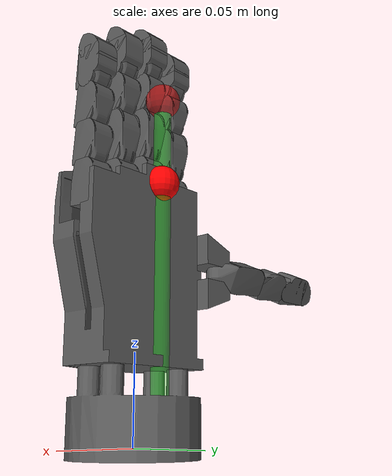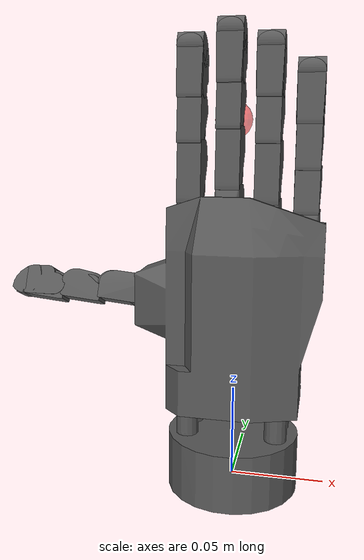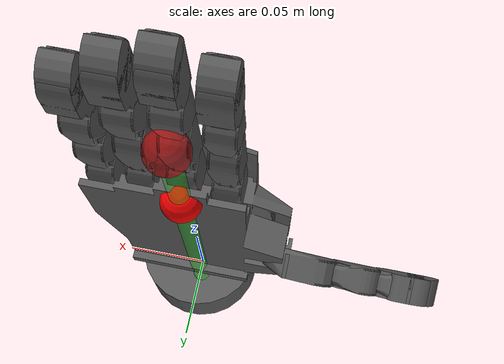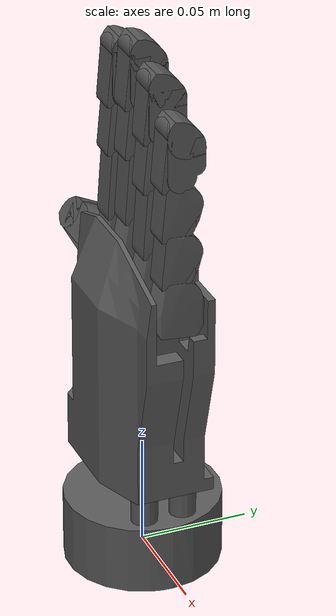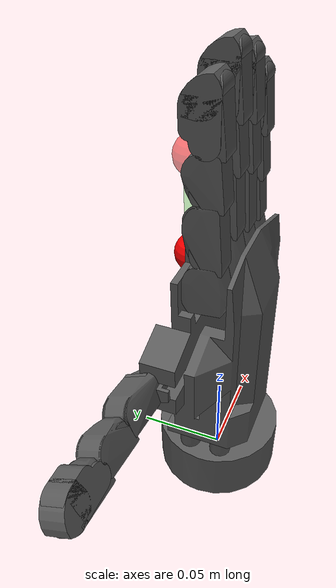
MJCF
<mujoco model="qbhand2m">
  <compiler angle="radian" meshdir="meshes"/>

  <option timestep="0.001" integrator="implicitfast"/>

  <default>
    <joint damping="80.0" armature="5.0" frictionloss="2.0"/>
    <geom contype="0" conaffinity="0" density="0" group="1"/>
  </default>

  <asset>
    <mesh name="flange_iso_04" content_type="model/obj" file="meshes/flange_iso_04.obj" scale="0.001 0.001 0.001"/>
    <mesh name="palm_pinch_r" content_type="model/obj" file="meshes/palm_pinch_r.obj" scale="0.001 0.001 0.001"/>
    <mesh name="ph_thumb_r" content_type="model/obj" file="meshes/ph_thumb_r.obj" scale="0.001 0.001 0.001"/>
    <mesh name="ph_thumb_r_collision" content_type="model/obj" file="meshes/ph_thumb_r_collision.obj" scale="0.001 0.001 0.001"/>
    <mesh name="ph_short" content_type="model/obj" file="meshes/ph_short.obj" scale="0.001 0.001 0.001"/>
    <mesh name="ph_short_collision" content_type="model/obj" file="meshes/ph_short_collision.obj" scale="0.001 0.001 0.001"/>
    <mesh name="ph_distal" content_type="model/obj" file="meshes/ph_distal.obj" scale="0.001 0.001 0.001"/>
    <mesh name="ph_distal_collision" content_type="model/obj" file="meshes/ph_distal_collision.obj" scale="0.001 0.001 0.001"/>
    <mesh name="ph_knuckle" content_type="model/obj" file="meshes/ph_knuckle.obj" scale="0.001 0.001 0.001"/>
    <mesh name="ph_knuckle_collision" content_type="model/obj" file="meshes/ph_knuckle_collision.obj" scale="0.001 0.001 0.001"/>
    <mesh name="ph_medium" content_type="model/obj" file="meshes/ph_medium.obj" scale="0.001 0.001 0.001"/>
    <mesh name="ph_medium_collision" content_type="model/obj" file="meshes/ph_medium_collision.obj" scale="0.001 0.001 0.001"/>
  </asset>

  <worldbody>
    <body name="qbhand2m_base_link" pos="0 0 0">

      <!-- Geoms de la palma y flange -->
      <geom type="mesh" contype="0" conaffinity="0" group="1" density="0" rgba="0.35 0.35 0.35 1" mesh="flange_iso_04"/>
      <geom type="mesh" rgba="0.35 0.35 0.35 1" mesh="flange_iso_04"/>
      <geom pos="-0.0045 0.0145 0.144" quat="0.707388 0.706825 0 0" type="mesh" contype="0" conaffinity="0" group="1" density="0" rgba="0.35 0.35 0.35 1" mesh="palm_pinch_r"/>
      <geom pos="-0.0045 0.0145 0.144" quat="0.707388 0.706825 0 0" type="mesh" rgba="0.35 0.35 0.35 1" mesh="palm_pinch_r"/>

      <!-- Sites para robosuite -->
      <site name="ft_frame" pos="-0.0045 0.0145 0.144" size="0.01 0.01 0.01" rgba="1 0 0 1" type="sphere" group="1"/>
      <site name="grip_site" pos="-0.0045 0.0145 0.194" size="0.01 0.01 0.01" rgba="1 0 0 0.5" type="sphere" group="1"/>
      <site name="grip_site_cylinder" pos="-0.0045 0.0145 0.094" size="0.005 0.1" rgba="0 1 0 0.3" type="cylinder" group="1"/>
      <!-- robosuite expects a body named 'eef' to derive gripper orientation -->
      <body name="eef" pos="-0.0045 0.0145 0.194" quat="1 0 0 0">
        <site name="eef" pos="0 0 0" size="0.01" rgba="0 1 0 0.3" type="sphere" group="1"/>
      </body>

      <body name="qbhand2m1_synergy_tendon_virtual_link" pos="-0.0045 0.0145 0.144" quat="0.707388 0.706825 0 0">
        <inertial pos="0 0 0" mass="0.005" diaginertia="1e-06 1e-06 1e-06"/>
        <joint name="qbhand2m1_synergy_joint" pos="0 0 0" axis="0 0 1" range="0 1" actuatorfrcrange="-100 100"/>
      </body>

      <body name="qbhand2m1_thumb_knuckle_link" pos="-0.0485 0.016463 0.0974984" quat="0.000796327 0 0.000796326 0.999999">
        <inertial pos="0.0130716 -0.00273578 0.000643478" quat="0.502681 0.576479 0.364062 0.531453" mass="0.01" diaginertia="1.4342e-06 1.35762e-06 3.12515e-07"/>
        <joint name="qbhand2m1_thumb_knuckle_joint" pos="0 0 0" axis="0 0 -1" range="0 1.571" actuatorfrcrange="-100 100"/>
        <geom type="mesh" contype="0" conaffinity="0" group="1" density="0" rgba="0.35 0.35 0.35 1" mesh="ph_thumb_r"/>
        <geom type="mesh" rgba="0.35 0.35 0.35 1" mesh="ph_thumb_r_collision"/>
        <body name="qbhand2m1_thumb_proximal_virtual_link" pos="0.0255 -0.0038 -0.00012" quat="0.841496 -0.540263 0 0">
          <inertial pos="0 0 0" mass="0.005" diaginertia="1e-06 1e-06 1e-06"/>
          <joint name="qbhand2m1_thumb_proximal_joint" pos="0 0 0" axis="0 0 -1" range="0 0.785" actuatorfrcrange="-100 100"/>
          <body name="qbhand2m1_thumb_proximal_link" pos="0.013 0 0">
            <inertial pos="0.00476016 -0.00137869 0" quat="0.0365143 0.706163 -0.0365143 0.706163" mass="0.0063" diaginertia="2.6915e-07 2.3576e-07 1.79645e-07"/>
            <joint name="qbhand2m1_thumb_proximal_virtual_joint" pos="0 0 0" axis="0 0 -1" range="0 0.785" actuatorfrcrange="-100 100"/>
            <geom type="mesh" contype="0" conaffinity="0" group="1" density="0" rgba="0.35 0.35 0.35 1" mesh="ph_short"/>
            <geom type="mesh" rgba="0.35 0.35 0.35 1" mesh="ph_short_collision"/>
            <body name="qbhand2m1_thumb_distal_virtual_link" pos="0.009 0 0">
              <inertial pos="0 0 0" mass="0.005" diaginertia="1e-06 1e-06 1e-06"/>
              <joint name="qbhand2m1_thumb_distal_joint" pos="0 0 0" axis="0 0 -1" range="0 0.785" actuatorfrcrange="-100 100"/>
              <body name="qbhand2m1_thumb_distal_link" pos="0.013 0 0">
                <inertial pos="0.00880255 -0.00172193 0" quat="0.0131386 0.706985 -0.0131386 0.706985" mass="0.009" diaginertia="6.6782e-07 5.99819e-07 2.654e-07"/>
                <joint name="qbhand2m1_thumb_distal_virtual_joint" pos="0 0 0" axis="0 0 -1" range="0 0.785" actuatorfrcrange="-100 100"/>
                <geom type="mesh" contype="0" conaffinity="0" group="1" density="0" rgba="0.35 0.35 0.35 1" mesh="ph_distal"/>
                <geom type="mesh" rgba="0.35 0.35 0.35 1" mesh="ph_distal_collision"/>
              </body>
            </body>
          </body>
        </body>
      </body>

      <body name="qbhand2m1_index_knuckle_link" pos="-0.0245 0.00049443 0.137011" quat="0.500398 0.5 -0.499602 0.5">
        <inertial pos="0.000427536 0 -0.00143217" quat="0.587164 0.394003 0.394003 0.587164" mass="0.0095" diaginertia="1.12538e-06 7.39498e-07 6.27245e-07"/>
        <joint name="qbhand2m1_index_knuckle_joint" pos="0 0 0" axis="0 0 -1" range="-0.524 0.524" actuatorfrcrange="-100 100"/>
        <geom type="mesh" contype="0" conaffinity="0" group="1" density="0" rgba="0.35 0.35 0.35 1" mesh="ph_knuckle"/>
        <geom type="mesh" rgba="0.35 0.35 0.35 1" mesh="ph_knuckle_collision"/>
        <body name="qbhand2m1_index_proximal_virtual_link" pos="0.009 0 0" quat="0.707388 0.706825 0 0">
          <inertial pos="0 0 0" mass="0.005" diaginertia="1e-06 1e-06 1e-06"/>
          <joint name="qbhand2m1_index_proximal_joint" pos="0 0 0" axis="0 0 -1" range="0 0.785" actuatorfrcrange="-100 100"/>
          <body name="qbhand2m1_index_proximal_link" pos="0.013 0 0">
            <inertial pos="0.00877074 -0.00178631 0" quat="0.0123083 0.707 -0.0123083 0.707" mass="0.0082" diaginertia="5.95622e-07 5.59876e-07 2.26817e-07"/>
            <joint name="qbhand2m1_index_proximal_virtual_joint" pos="0 0 0" axis="0 0 -1" range="0 0.785" actuatorfrcrange="-100 100"/>
            <geom type="mesh" contype="0" conaffinity="0" group="1" density="0" rgba="0.35 0.35 0.35 1" mesh="ph_medium"/>
            <geom type="mesh" rgba="0.35 0.35 0.35 1" mesh="ph_medium_collision"/>
            <body name="qbhand2m1_index_middle_virtual_link" pos="0.017 0 0">
              <inertial pos="0 0 0" mass="0.005" diaginertia="1e-06 1e-06 1e-06"/>
              <joint name="qbhand2m1_index_middle_joint" pos="0 0 0" axis="0 0 -1" range="0 0.785" actuatorfrcrange="-100 100"/>
              <body name="qbhand2m1_index_middle_link" pos="0.013 0 0">
                <inertial pos="0.00476016 -0.00137869 0" quat="0.0365143 0.706163 -0.0365143 0.706163" mass="0.0063" diaginertia="2.6915e-07 2.3576e-07 1.79645e-07"/>
                <joint name="qbhand2m1_index_middle_virtual_joint" pos="0 0 0" axis="0 0 -1" range="0 0.785" actuatorfrcrange="-100 100"/>
                <geom type="mesh" contype="0" conaffinity="0" group="1" density="0" rgba="0.35 0.35 0.35 1" mesh="ph_short"/>
                <geom type="mesh" rgba="0.35 0.35 0.35 1" mesh="ph_short_collision"/>
                <body name="qbhand2m1_index_distal_virtual_link" pos="0.009 0 0">
                  <inertial pos="0 0 0" mass="0.005" diaginertia="1e-06 1e-06 1e-06"/>
                  <joint name="qbhand2m1_index_distal_joint" pos="0 0 0" axis="0 0 -1" range="0 0.785" actuatorfrcrange="-100 100"/>
                  <body name="qbhand2m1_index_distal_link" pos="0.013 0 0">
                    <inertial pos="0.00880255 -0.00172193 0" quat="0.0131386 0.706985 -0.0131386 0.706985" mass="0.009" diaginertia="6.6782e-07 5.99819e-07 2.654e-07"/>
                    <joint name="qbhand2m1_index_distal_virtual_joint" pos="0 0 0" axis="0 0 -1" range="0 0.785" actuatorfrcrange="-100 100"/>
                    <geom type="mesh" contype="0" conaffinity="0" group="1" density="0" rgba="0.35 0.35 0.35 1" mesh="ph_distal"/>
                    <geom type="mesh" rgba="0.35 0.35 0.35 1" mesh="ph_distal_collision"/>
                  </body>
                </body>
              </body>
            </body>
          </body>
        </body>
      </body>

      <body name="qbhand2m1_middle_knuckle_link" pos="-0.0045 0.000500004 0.144011" quat="0.500398 0.5 -0.499602 0.5">
        <inertial pos="0.000427536 0 -0.00143217" quat="0.587164 0.394003 0.394003 0.587164" mass="0.0095" diaginertia="1.12538e-06 7.39498e-07 6.27245e-07"/>
        <joint name="qbhand2m1_middle_knuckle_joint" pos="0 0 0" axis="0 0 -1" range="-0.524 0.524" actuatorfrcrange="-100 100"/>
        <geom type="mesh" contype="0" conaffinity="0" group="1" density="0" rgba="0.35 0.35 0.35 1" mesh="ph_knuckle"/>
        <geom type="mesh" rgba="0.35 0.35 0.35 1" mesh="ph_knuckle_collision"/>
        <body name="qbhand2m1_middle_proximal_virtual_link" pos="0.009 0 0" quat="0.707388 0.706825 0 0">
          <inertial pos="0 0 0" mass="0.005" diaginertia="1e-06 1e-06 1e-06"/>
          <joint name="qbhand2m1_middle_proximal_joint" pos="0 0 0" axis="0 0 -1" range="0 0.785" actuatorfrcrange="-100 100"/>
          <body name="qbhand2m1_middle_proximal_link" pos="0.013 0 0">
            <inertial pos="0.00877074 -0.00178631 0" quat="0.0123083 0.707 -0.0123083 0.707" mass="0.0082" diaginertia="5.95622e-07 5.59876e-07 2.26817e-07"/>
            <joint name="qbhand2m1_middle_proximal_virtual_joint" pos="0 0 0" axis="0 0 -1" range="0 0.785" actuatorfrcrange="-100 100"/>
            <geom type="mesh" contype="0" conaffinity="0" group="1" density="0" rgba="0.35 0.35 0.35 1" mesh="ph_medium"/>
            <geom type="mesh" rgba="0.35 0.35 0.35 1" mesh="ph_medium_collision"/>
            <body name="qbhand2m1_middle_middle_virtual_link" pos="0.017 0 0">
              <inertial pos="0 0 0" mass="0.005" diaginertia="1e-06 1e-06 1e-06"/>
              <joint name="qbhand2m1_middle_middle_joint" pos="0 0 0" axis="0 0 -1" range="0 0.785" actuatorfrcrange="-100 100"/>
              <body name="qbhand2m1_middle_middle_link" pos="0.013 0 0">
                <inertial pos="0.00476016 -0.00137869 0" quat="0.0365143 0.706163 -0.0365143 0.706163" mass="0.0063" diaginertia="2.6915e-07 2.3576e-07 1.79645e-07"/>
                <joint name="qbhand2m1_middle_middle_virtual_joint" pos="0 0 0" axis="0 0 -1" range="0 0.785" actuatorfrcrange="-100 100"/>
                <geom type="mesh" contype="0" conaffinity="0" group="1" density="0" rgba="0.35 0.35 0.35 1" mesh="ph_short"/>
                <geom type="mesh" rgba="0.35 0.35 0.35 1" mesh="ph_short_collision"/>
                <body name="qbhand2m1_middle_distal_virtual_link" pos="0.009 0 0">
                  <inertial pos="0 0 0" mass="0.005" diaginertia="1e-06 1e-06 1e-06"/>
                  <joint name="qbhand2m1_middle_distal_joint" pos="0 0 0" axis="0 0 -1" range="0 0.785" actuatorfrcrange="-100 100"/>
                  <body name="qbhand2m1_middle_distal_link" pos="0.013 0 0">
                    <inertial pos="0.00880255 -0.00172193 0" quat="0.0131386 0.706985 -0.0131386 0.706985" mass="0.009" diaginertia="6.6782e-07 5.99819e-07 2.654e-07"/>
                    <joint name="qbhand2m1_middle_distal_virtual_joint" pos="0 0 0" axis="0 0 -1" range="0 0.785" actuatorfrcrange="-100 100"/>
                    <geom type="mesh" contype="0" conaffinity="0" group="1" density="0" rgba="0.35 0.35 0.35 1" mesh="ph_distal"/>
                    <geom type="mesh" rgba="0.35 0.35 0.35 1" mesh="ph_distal_collision"/>
                  </body>
                </body>
              </body>
            </body>
          </body>
        </body>
      </body>

      <body name="qbhand2m1_ring_knuckle_link" pos="0.0155 0.00049443 0.137011" quat="0.500398 0.5 -0.499602 0.5">
        <inertial pos="0.000427536 0 -0.00143217" quat="0.587164 0.394003 0.394003 0.587164" mass="0.0095" diaginertia="1.12538e-06 7.39498e-07 6.27245e-07"/>
        <joint name="qbhand2m1_ring_knuckle_joint" pos="0 0 0" axis="0 0 -1" range="-0.524 0.524" actuatorfrcrange="-100 100"/>
        <geom type="mesh" contype="0" conaffinity="0" group="1" density="0" rgba="0.35 0.35 0.35 1" mesh="ph_knuckle"/>
        <geom type="mesh" rgba="0.35 0.35 0.35 1" mesh="ph_knuckle_collision"/>
        <body name="qbhand2m1_ring_proximal_virtual_link" pos="0.009 0 0" quat="0.707388 0.706825 0 0">
          <inertial pos="0 0 0" mass="0.005" diaginertia="1e-06 1e-06 1e-06"/>
          <joint name="qbhand2m1_ring_proximal_joint" pos="0 0 0" axis="0 0 -1" range="0 0.785" actuatorfrcrange="-100 100"/>
          <body name="qbhand2m1_ring_proximal_link" pos="0.013 0 0">
            <inertial pos="0.00877074 -0.00178631 0" quat="0.0123083 0.707 -0.0123083 0.707" mass="0.0082" diaginertia="5.95622e-07 5.59876e-07 2.26817e-07"/>
            <joint name="qbhand2m1_ring_proximal_virtual_joint" pos="0 0 0" axis="0 0 -1" range="0 0.785" actuatorfrcrange="-100 100"/>
            <geom type="mesh" contype="0" conaffinity="0" group="1" density="0" rgba="0.35 0.35 0.35 1" mesh="ph_medium"/>
            <geom type="mesh" rgba="0.35 0.35 0.35 1" mesh="ph_medium_collision"/>
            <body name="qbhand2m1_ring_middle_virtual_link" pos="0.017 0 0">
              <inertial pos="0 0 0" mass="0.005" diaginertia="1e-06 1e-06 1e-06"/>
              <joint name="qbhand2m1_ring_middle_joint" pos="0 0 0" axis="0 0 -1" range="0 0.785" actuatorfrcrange="-100 100"/>
              <body name="qbhand2m1_ring_middle_link" pos="0.013 0 0">
                <inertial pos="0.00476016 -0.00137869 0" quat="0.0365143 0.706163 -0.0365143 0.706163" mass="0.0063" diaginertia="2.6915e-07 2.3576e-07 1.79645e-07"/>
                <joint name="qbhand2m1_ring_middle_virtual_joint" pos="0 0 0" axis="0 0 -1" range="0 0.785" actuatorfrcrange="-100 100"/>
                <geom type="mesh" contype="0" conaffinity="0" group="1" density="0" rgba="0.35 0.35 0.35 1" mesh="ph_short"/>
                <geom type="mesh" rgba="0.35 0.35 0.35 1" mesh="ph_short_collision"/>
                <body name="qbhand2m1_ring_distal_virtual_link" pos="0.009 0 0">
                  <inertial pos="0 0 0" mass="0.005" diaginertia="1e-06 1e-06 1e-06"/>
                  <joint name="qbhand2m1_ring_distal_joint" pos="0 0 0" axis="0 0 -1" range="0 0.785" actuatorfrcrange="-100 100"/>
                  <body name="qbhand2m1_ring_distal_link" pos="0.013 0 0">
                    <inertial pos="0.00880255 -0.00172193 0" quat="0.0131386 0.706985 -0.0131386 0.706985" mass="0.009" diaginertia="6.6782e-07 5.99819e-07 2.654e-07"/>
                    <joint name="qbhand2m1_ring_distal_virtual_joint" pos="0 0 0" axis="0 0 -1" range="0 0.785" actuatorfrcrange="-100 100"/>
                    <geom type="mesh" contype="0" conaffinity="0" group="1" density="0" rgba="0.35 0.35 0.35 1" mesh="ph_distal"/>
                    <geom type="mesh" rgba="0.35 0.35 0.35 1" mesh="ph_distal_collision"/>
                  </body>
                </body>
              </body>
            </body>
          </body>
        </body>
      </body>

      <body name="qbhand2m1_little_knuckle_link" pos="0.0355 0.000490449 0.132011" quat="0.500398 0.5 -0.499602 0.5">
        <inertial pos="0.000427536 0 -0.00143217" quat="0.587164 0.394003 0.394003 0.587164" mass="0.0095" diaginertia="1.12538e-06 7.39498e-07 6.27245e-07"/>
        <joint name="qbhand2m1_little_knuckle_joint" pos="0 0 0" axis="0 0 -1" range="-0.524 0.524" actuatorfrcrange="-100 100"/>
        <geom type="mesh" contype="0" conaffinity="0" group="1" density="0" rgba="0.35 0.35 0.35 1" mesh="ph_knuckle"/>
        <geom type="mesh" rgba="0.35 0.35 0.35 1" mesh="ph_knuckle_collision"/>
        <body name="qbhand2m1_little_proximal_virtual_link" pos="0.009 0 0" quat="0.707388 0.706825 0 0">
          <inertial pos="0 0 0" mass="0.005" diaginertia="1e-06 1e-06 1e-06"/>
          <joint name="qbhand2m1_little_proximal_joint" pos="0 0 0" axis="0 0 -1" range="0 0.785" actuatorfrcrange="-100 100"/>
          <body name="qbhand2m1_little_proximal_link" pos="0.013 0 0">
            <inertial pos="0.00476016 -0.00137869 0" quat="0.0365143 0.706163 -0.0365143 0.706163" mass="0.0063" diaginertia="2.6915e-07 2.3576e-07 1.79645e-07"/>
            <joint name="qbhand2m1_little_proximal_virtual_joint" pos="0 0 0" axis="0 0 -1" range="0 0.785" actuatorfrcrange="-100 100"/>
            <geom type="mesh" contype="0" conaffinity="0" group="1" density="0" rgba="0.35 0.35 0.35 1" mesh="ph_short"/>
            <geom type="mesh" rgba="0.35 0.35 0.35 1" mesh="ph_short_collision"/>
            <body name="qbhand2m1_little_middle_virtual_link" pos="0.009 0 0">
              <inertial pos="0 0 0" mass="0.005" diaginertia="1e-06 1e-06 1e-06"/>
              <joint name="qbhand2m1_little_middle_joint" pos="0 0 0" axis="0 0 -1" range="0 0.785" actuatorfrcrange="-100 100"/>
              <body name="qbhand2m1_little_middle_link" pos="0.013 0 0">
                <inertial pos="0.00476016 -0.00137869 0" quat="0.0365143 0.706163 -0.0365143 0.706163" mass="0.0063" diaginertia="2.6915e-07 2.3576e-07 1.79645e-07"/>
                <joint name="qbhand2m1_little_middle_virtual_joint" pos="0 0 0" axis="0 0 -1" range="0 0.785" actuatorfrcrange="-100 100"/>
                <geom type="mesh" contype="0" conaffinity="0" group="1" density="0" rgba="0.35 0.35 0.35 1" mesh="ph_short"/>
                <geom type="mesh" rgba="0.35 0.35 0.35 1" mesh="ph_short_collision"/>
                <body name="qbhand2m1_little_distal_virtual_link" pos="0.009 0 0">
                  <inertial pos="0 0 0" mass="0.005" diaginertia="1e-06 1e-06 1e-06"/>
                  <joint name="qbhand2m1_little_distal_joint" pos="0 0 0" axis="0 0 -1" range="0 0.785" actuatorfrcrange="-100 100"/>
                  <body name="qbhand2m1_little_distal_link" pos="0.013 0 0">
                    <inertial pos="0.00880255 -0.00172193 0" quat="0.0131386 0.706985 -0.0131386 0.706985" mass="0.009" diaginertia="6.6782e-07 5.99819e-07 2.654e-07"/>
                    <joint name="qbhand2m1_little_distal_virtual_joint" pos="0 0 0" axis="0 0 -1" range="0 0.785" actuatorfrcrange="-100 100"/>
                    <geom type="mesh" contype="0" conaffinity="0" group="1" density="0" rgba="0.35 0.35 0.35 1" mesh="ph_distal"/>
                    <geom type="mesh" rgba="0.35 0.35 0.35 1" mesh="ph_distal_collision"/>
                  </body>
                </body>
              </body>
            </body>
          </body>
        </body>
      </body>

      <body name="qbhand2m1_manipulation_tendon_virtual_link" pos="-0.0045 0.0145 0.144" quat="0.707388 0.706825 0 0">
        <inertial pos="0 0 0" mass="0.005" diaginertia="1e-06 1e-06 1e-06"/>
        <joint name="qbhand2m1_manipulation_joint" pos="0 0 0" axis="0 0 1" range="-1 1" actuatorfrcrange="-100 100"/>
      </body>

      <body name="qbhand2m1_motor_1_tendon_virtual_link" pos="-0.0045 0.0145 0.144" quat="0.707388 0.706825 0 0">
        <inertial pos="0 0 0" mass="0.005" diaginertia="1e-06 1e-06 1e-06"/>
        <joint name="qbhand2m1_motor_1_joint" pos="0 0 0" axis="0 0 1" range="0 1" actuatorfrcrange="-100 100"/>
      </body>

      <body name="qbhand2m1_motor_2_tendon_virtual_link" pos="-0.0045 0.0145 0.144" quat="0.707388 0.706825 0 0">
        <inertial pos="0 0 0" mass="0.005" diaginertia="1e-06 1e-06 1e-06"/>
        <joint name="qbhand2m1_motor_2_joint" pos="0 0 0" axis="0 0 1" range="0 1" actuatorfrcrange="-100 100"/>
      </body>

    </body>
  </worldbody>

  <equality>
    <!-- Pulgar -->
    <joint name="thumb_knuckle_eq"    joint1="qbhand2m1_thumb_knuckle_joint"           joint2="qbhand2m1_manipulation_joint"   polycoef="0 0.65 0 0 0"/>
    <joint name="thumb_proximal_eq"   joint1="qbhand2m1_thumb_proximal_joint"          joint2="qbhand2m1_manipulation_joint"   polycoef="0 0.35 0 0 0"/>
    <joint name="thumb_prox_virt_eq"  joint1="qbhand2m1_thumb_proximal_virtual_joint"  joint2="qbhand2m1_thumb_proximal_joint" polycoef="0 1.0 0 0 0"/>
    <joint name="thumb_distal_eq"     joint1="qbhand2m1_thumb_distal_joint"            joint2="qbhand2m1_manipulation_joint"   polycoef="0 0.35 0 0 0"/>
    <joint name="thumb_dist_virt_eq"  joint1="qbhand2m1_thumb_distal_virtual_joint"    joint2="qbhand2m1_thumb_distal_joint"   polycoef="0 1.0 0 0 0"/>
    <!-- Indice -->
    <joint name="index_knuckle_eq"    joint1="qbhand2m1_index_knuckle_joint"           joint2="qbhand2m1_synergy_joint"        polycoef="0 -0.06 0 0 0"/>
    <joint name="index_proximal_eq"   joint1="qbhand2m1_index_proximal_joint"          joint2="qbhand2m1_manipulation_joint"   polycoef="0 0.8 0 0 0" solref="-8000 -200" solimp="0.999 0.9999 0.0001 0.5 2"/>
    <joint name="index_prox_virt_eq"  joint1="qbhand2m1_index_proximal_virtual_joint"  joint2="qbhand2m1_index_proximal_joint" polycoef="0 1.0 0 0 0"/>
    <joint name="index_middle_eq"     joint1="qbhand2m1_index_middle_joint"            joint2="qbhand2m1_synergy_joint"        polycoef="0 0.5 0 0 0"/>
    <joint name="index_mid_virt_eq"   joint1="qbhand2m1_index_middle_virtual_joint"    joint2="qbhand2m1_index_middle_joint"   polycoef="0 1.0 0 0 0"/>
    <joint name="index_distal_eq"     joint1="qbhand2m1_index_distal_joint"            joint2="qbhand2m1_synergy_joint"        polycoef="0 0.5 0 0 0"/>
    <joint name="index_dist_virt_eq"  joint1="qbhand2m1_index_distal_virtual_joint"    joint2="qbhand2m1_index_distal_joint"   polycoef="0 1.0 0 0 0"/>
    <!-- Medio -->
    <joint name="middle_knuckle_eq"    joint1="qbhand2m1_middle_knuckle_joint"          joint2="qbhand2m1_manipulation_joint"   polycoef="0 0.0 0 0 0"/>
    <joint name="middle_proximal_eq"   joint1="qbhand2m1_middle_proximal_joint"         joint2="qbhand2m1_manipulation_joint"   polycoef="0 0.8 0 0 0" solref="-8000 -200" solimp="0.999 0.9999 0.0001 0.5 2"/>
    <joint name="middle_prox_virt_eq"  joint1="qbhand2m1_middle_proximal_virtual_joint" joint2="qbhand2m1_middle_proximal_joint" polycoef="0 1.0 0 0 0"/>
    <joint name="middle_middle_eq"     joint1="qbhand2m1_middle_middle_joint"           joint2="qbhand2m1_synergy_joint"        polycoef="0 0.5 0 0 0"/>
    <joint name="middle_mid_virt_eq"   joint1="qbhand2m1_middle_middle_virtual_joint"   joint2="qbhand2m1_middle_middle_joint"  polycoef="0 1.0 0 0 0"/>
    <joint name="middle_distal_eq"     joint1="qbhand2m1_middle_distal_joint"           joint2="qbhand2m1_synergy_joint"        polycoef="0 0.5 0 0 0"/>
    <joint name="middle_dist_virt_eq"  joint1="qbhand2m1_middle_distal_virtual_joint"   joint2="qbhand2m1_middle_distal_joint"  polycoef="0 1.0 0 0 0"/>
    <!-- Anular -->
    <joint name="ring_knuckle_eq"     joint1="qbhand2m1_ring_knuckle_joint"           joint2="qbhand2m1_synergy_joint"       polycoef="0 0.06 0 0 0"/>
    <joint name="ring_proximal_eq"    joint1="qbhand2m1_ring_proximal_joint"          joint2="qbhand2m1_manipulation_joint"   polycoef="0 0.8 0 0 0" solref="-8000 -200" solimp="0.999 0.9999 0.0001 0.5 2"/>
    <joint name="ring_prox_virt_eq"   joint1="qbhand2m1_ring_proximal_virtual_joint"  joint2="qbhand2m1_ring_proximal_joint" polycoef="0 1.0 0 0 0"/>
    <joint name="ring_middle_eq"      joint1="qbhand2m1_ring_middle_joint"            joint2="qbhand2m1_synergy_joint"       polycoef="0 0.5 0 0 0"/>
    <joint name="ring_mid_virt_eq"    joint1="qbhand2m1_ring_middle_virtual_joint"    joint2="qbhand2m1_ring_middle_joint"   polycoef="0 1.0 0 0 0"/>
    <joint name="ring_distal_eq"      joint1="qbhand2m1_ring_distal_joint"            joint2="qbhand2m1_synergy_joint"       polycoef="0 0.5 0 0 0"/>
    <joint name="ring_dist_virt_eq"   joint1="qbhand2m1_ring_distal_virtual_joint"    joint2="qbhand2m1_ring_distal_joint"   polycoef="0 1.0 0 0 0"/>
    <!-- Menique -->
    <joint name="little_knuckle_eq"    joint1="qbhand2m1_little_knuckle_joint"          joint2="qbhand2m1_synergy_joint"          polycoef="0 0.10 0 0 0"/>
    <joint name="little_proximal_eq"   joint1="qbhand2m1_little_proximal_joint"         joint2="qbhand2m1_manipulation_joint"   polycoef="0 0.8 0 0 0" solref="-8000 -200" solimp="0.999 0.9999 0.0001 0.5 2"/>
    <joint name="little_prox_virt_eq"  joint1="qbhand2m1_little_proximal_virtual_joint" joint2="qbhand2m1_little_proximal_joint"  polycoef="0 1.0 0 0 0"/>
    <joint name="little_middle_eq"     joint1="qbhand2m1_little_middle_joint"           joint2="qbhand2m1_synergy_joint"          polycoef="0 0.5 0 0 0"/>
    <joint name="little_mid_virt_eq"   joint1="qbhand2m1_little_middle_virtual_joint"   joint2="qbhand2m1_little_middle_joint"    polycoef="0 1.0 0 0 0"/>
    <joint name="little_distal_eq"     joint1="qbhand2m1_little_distal_joint"           joint2="qbhand2m1_synergy_joint"          polycoef="0 0.5 0 0 0"/>
    <joint name="little_dist_virt_eq"  joint1="qbhand2m1_little_distal_virtual_joint"   joint2="qbhand2m1_little_distal_joint"    polycoef="0 1.0 0 0 0"/>
  </equality>

  <actuator>
    <position name="qbhand2m1_synergy_act"      joint="qbhand2m1_synergy_joint"      kp="1" ctrllimited="true" ctrlrange="0 1"/>
    <position name="qbhand2m1_manipulation_act" joint="qbhand2m1_manipulation_joint" kp="20" ctrllimited="true" ctrlrange="0 1"/>
  </actuator>

  <sensor>
    <force  name="force_ee"  site="ft_frame"/>
    <torque name="torque_ee" site="ft_frame"/>
  </sensor>

</mujoco>
